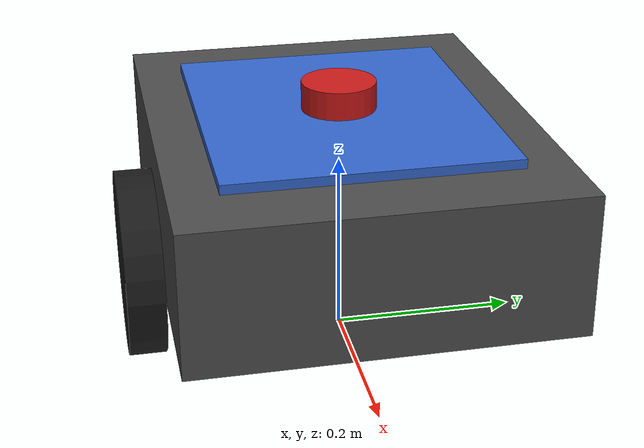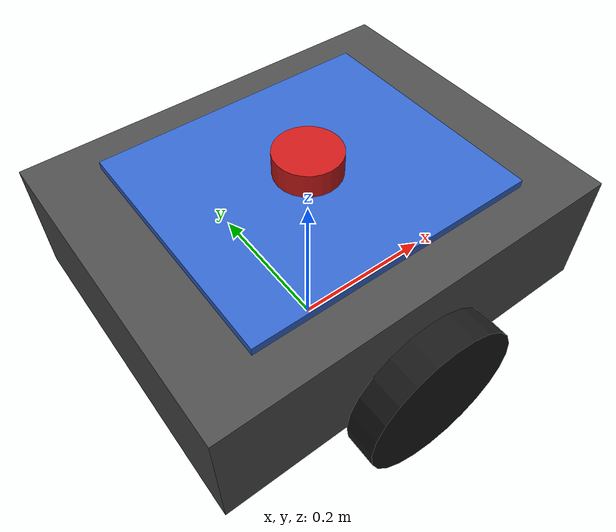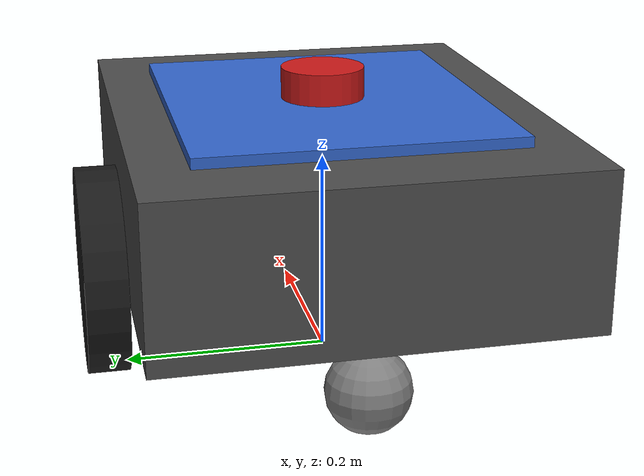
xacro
<?xml version="1.0"?>
<robot xmlns:xacro="http://www.ros.org/wiki/xacro" name="warehouse_robot">

  <!-- Robot parameters -->
  <xacro:property name="chassis_length" value="0.5"/>
  <xacro:property name="chassis_width" value="0.4"/>
  <xacro:property name="chassis_height" value="0.15"/>
  <xacro:property name="chassis_mass" value="10.0"/>

  <xacro:property name="wheel_radius" value="0.1"/>
  <xacro:property name="wheel_width" value="0.04"/>
  <xacro:property name="wheel_mass" value="0.5"/>
  <xacro:property name="wheel_separation" value="0.44"/>

  <xacro:property name="caster_radius" value="0.04"/>
  <xacro:property name="caster_mass" value="0.1"/>

  <!-- Include sub-xacros -->
  <xacro:include filename="$(find warehouse_robot_description)/urdf/chassis.xacro"/>
  <xacro:include filename="$(find warehouse_robot_description)/urdf/wheels.xacro"/>
  <xacro:include filename="$(find warehouse_robot_description)/urdf/sensors.xacro"/>
  <xacro:include filename="$(find warehouse_robot_description)/urdf/ros2_control.xacro"/>
  <xacro:include filename="$(find warehouse_robot_description)/urdf/gazebo.xacro"/>

  <!-- Instantiate robot components -->
  <xacro:chassis/>
  <xacro:drive_wheel prefix="left" y_offset="${wheel_separation/2}"/>
  <xacro:drive_wheel prefix="right" y_offset="${-wheel_separation/2}"/>
  <xacro:caster_wheel/>
  <xacro:lidar_sensor/>
  <xacro:imu_sensor/>
  <xacro:camera_sensor/>
  <xacro:gazebo_plugins/>

</robot>

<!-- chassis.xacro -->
<robot xmlns:xacro="http://www.ros.org/wiki/xacro">

  <xacro:macro name="chassis">

    <!-- Base footprint (ground projection) -->
    <link name="base_footprint"/>

    <joint name="base_joint" type="fixed">
      <parent link="base_footprint"/>
      <child link="base_link"/>
      <origin xyz="0.0 0.0 ${wheel_radius}" rpy="0.0 0.0 0.0"/>
    </joint>

    <!-- Base link (main chassis) -->
    <link name="base_link">
      <visual>
        <geometry>
          <box size="${chassis_length} ${chassis_width} ${chassis_height}"/>
        </geometry>
        <origin xyz="0.0 0.0 ${chassis_height/2}" rpy="0.0 0.0 0.0"/>
        <material name="dark_grey">
          <color rgba="0.3 0.3 0.3 1.0"/>
        </material>
      </visual>
      <collision>
        <geometry>
          <box size="${chassis_length} ${chassis_width} ${chassis_height}"/>
        </geometry>
        <origin xyz="0.0 0.0 ${chassis_height/2}" rpy="0.0 0.0 0.0"/>
      </collision>
      <inertial>
        <mass value="${chassis_mass}"/>
        <origin xyz="0.0 0.0 ${chassis_height/2}" rpy="0.0 0.0 0.0"/>
        <inertia
          ixx="${(1/12)*chassis_mass*(chassis_width*chassis_width + chassis_height*chassis_height)}"
          ixy="0.0" ixz="0.0"
          iyy="${(1/12)*chassis_mass*(chassis_length*chassis_length + chassis_height*chassis_height)}"
          iyz="0.0"
          izz="${(1/12)*chassis_mass*(chassis_length*chassis_length + chassis_width*chassis_width)}"/>
      </inertial>
    </link>

    <!-- Top plate for payload -->
    <link name="top_plate">
      <visual>
        <geometry>
          <box size="0.35 0.30 0.01"/>
        </geometry>
        <material name="blue">
          <color rgba="0.2 0.4 0.8 1.0"/>
        </material>
      </visual>
      <collision>
        <geometry>
          <box size="0.35 0.30 0.01"/>
        </geometry>
      </collision>
      <inertial>
        <mass value="0.5"/>
        <inertia ixx="0.001" ixy="0.0" ixz="0.0" iyy="0.001" iyz="0.0" izz="0.001"/>
      </inertial>
    </link>

    <joint name="top_plate_joint" type="fixed">
      <parent link="base_link"/>
      <child link="top_plate"/>
      <origin xyz="0.0 0.0 ${chassis_height + 0.005}" rpy="0.0 0.0 0.0"/>
    </joint>

  </xacro:macro>

</robot>

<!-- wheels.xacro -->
<robot xmlns:xacro="http://www.ros.org/wiki/xacro">

  <!-- Inertia macro for a cylinder (wheel) -->
  <xacro:macro name="cylinder_inertia" params="m r h">
    <inertia
      ixx="${(1/12)*m*(3*r*r + h*h)}"
      ixy="0.0" ixz="0.0"
      iyy="${(1/12)*m*(3*r*r + h*h)}"
      iyz="0.0"
      izz="${(1/2)*m*r*r}"/>
  </xacro:macro>

  <!-- Drive wheel macro -->
  <xacro:macro name="drive_wheel" params="prefix y_offset">

    <link name="${prefix}_wheel_link">
      <visual>
        <geometry>
          <cylinder radius="${wheel_radius}" length="${wheel_width}"/>
        </geometry>
        <material name="black">
          <color rgba="0.1 0.1 0.1 1.0"/>
        </material>
      </visual>
      <collision>
        <geometry>
          <cylinder radius="${wheel_radius}" length="${wheel_width}"/>
        </geometry>
      </collision>
      <inertial>
        <mass value="${wheel_mass}"/>
        <xacro:cylinder_inertia m="${wheel_mass}" r="${wheel_radius}" h="${wheel_width}"/>
      </inertial>
    </link>

    <joint name="${prefix}_wheel_joint" type="continuous">
      <parent link="base_link"/>
      <child link="${prefix}_wheel_link"/>
      <origin xyz="0.0 ${y_offset} 0.0" rpy="${-pi/2} 0.0 0.0"/>
      <axis xyz="0.0 0.0 1.0"/>
      <dynamics damping="0.01" friction="0.1"/>
    </joint>

  </xacro:macro>

  <!-- Passive caster wheel (sphere) -->
  <xacro:macro name="caster_wheel">

    <link name="caster_wheel_link">
      <visual>
        <geometry>
          <sphere radius="${caster_radius}"/>
        </geometry>
        <material name="grey">
          <color rgba="0.5 0.5 0.5 1.0"/>
        </material>
      </visual>
      <collision>
        <geometry>
          <sphere radius="${caster_radius}"/>
        </geometry>
      </collision>
      <inertial>
        <mass value="${caster_mass}"/>
        <inertia
          ixx="${(2/5)*caster_mass*caster_radius*caster_radius}"
          ixy="0.0" ixz="0.0"
          iyy="${(2/5)*caster_mass*caster_radius*caster_radius}"
          iyz="0.0"
          izz="${(2/5)*caster_mass*caster_radius*caster_radius}"/>
      </inertial>
    </link>

    <joint name="caster_wheel_joint" type="fixed">
      <parent link="base_link"/>
      <child link="caster_wheel_link"/>
      <origin xyz="${-chassis_length/2 + caster_radius + 0.02} 0.0 ${-(wheel_radius - caster_radius)}" rpy="0.0 0.0 0.0"/>
    </joint>

    <!-- Reduce caster friction in Gazebo -->
    <gazebo reference="caster_wheel_link">
      <mu1>0.001</mu1>
      <mu2>0.001</mu2>
      <material>Gazebo/Grey</material>
    </gazebo>

  </xacro:macro>

</robot>

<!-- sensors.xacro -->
<robot xmlns:xacro="http://www.ros.org/wiki/xacro">

  <!-- Lidar sensor (top-center of chassis) -->
  <xacro:macro name="lidar_sensor">

    <link name="lidar_link">
      <visual>
        <geometry>
          <cylinder radius="0.04" length="0.04"/>
        </geometry>
        <material name="red">
          <color rgba="0.8 0.1 0.1 1.0"/>
        </material>
      </visual>
      <collision>
        <geometry>
          <cylinder radius="0.04" length="0.04"/>
        </geometry>
      </collision>
      <inertial>
        <mass value="0.2"/>
        <inertia ixx="0.0001" ixy="0.0" ixz="0.0" iyy="0.0001" iyz="0.0" izz="0.0001"/>
      </inertial>
    </link>

    <joint name="lidar_joint" type="fixed">
      <parent link="base_link"/>
      <child link="lidar_link"/>
      <origin xyz="0.0 0.0 ${chassis_height + 0.02}" rpy="0.0 0.0 0.0"/>
    </joint>

  </xacro:macro>

  <!-- IMU sensor (center of base) -->
  <xacro:macro name="imu_sensor">

    <link name="imu_link">
      <inertial>
        <mass value="0.01"/>
        <inertia ixx="0.00001" ixy="0.0" ixz="0.0" iyy="0.00001" iyz="0.0" izz="0.00001"/>
      </inertial>
    </link>

    <joint name="imu_joint" type="fixed">
      <parent link="base_link"/>
      <child link="imu_link"/>
      <origin xyz="0.0 0.0 ${chassis_height/2}" rpy="0.0 0.0 0.0"/>
    </joint>

  </xacro:macro>

  <!-- Front-facing RGB camera -->
  <xacro:macro name="camera_sensor">

    <link name="camera_link">
      <visual>
        <geometry>
          <box size="0.03 0.06 0.03"/>
        </geometry>
        <material name="dark_blue">
          <color rgba="0.1 0.1 0.4 1.0"/>
        </material>
      </visual>
      <collision>
        <geometry>
          <box size="0.03 0.06 0.03"/>
        </geometry>
      </collision>
      <inertial>
        <mass value="0.05"/>
        <inertia ixx="0.00001" ixy="0.0" ixz="0.0" iyy="0.00001" iyz="0.0" izz="0.00001"/>
      </inertial>
    </link>

    <joint name="camera_joint" type="fixed">
      <parent link="base_link"/>
      <child link="camera_link"/>
      <origin xyz="${chassis_length/2 - 0.02} 0.0 ${chassis_height - 0.02}" rpy="0.0 0.0 0.0"/>
    </joint>

    <!-- Optical frame (rotated to match camera convention: z forward, x right, y down) -->
    <link name="camera_optical_link"/>

    <joint name="camera_optical_joint" type="fixed">
      <parent link="camera_link"/>
      <child link="camera_optical_link"/>
      <origin xyz="0.0 0.0 0.0" rpy="${-pi/2} 0.0 ${-pi/2}"/>
    </joint>

  </xacro:macro>

</robot>
